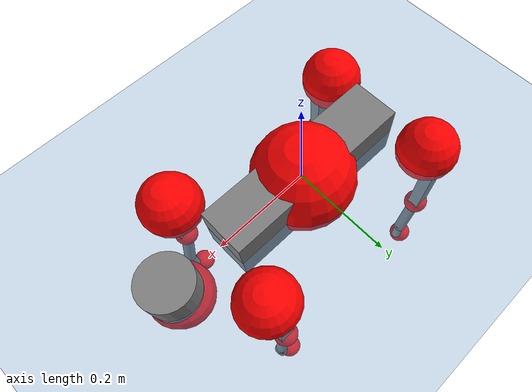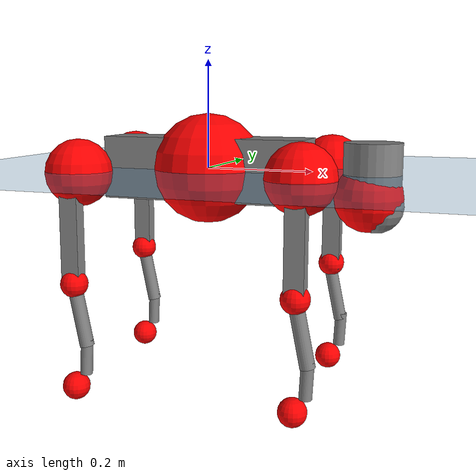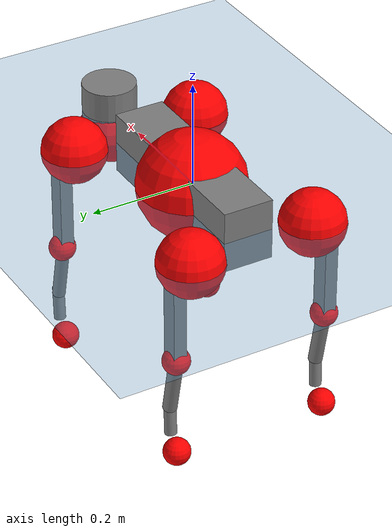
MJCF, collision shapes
<mujoco model="go2">
  <compiler angle="radian" assetdir="assets" balanceinertia="true" inertiafromgeom="false"/>

  <option timestep="0.005" density="1.2" viscosity="2e-05"/>

  <size nkey="1"/>

  <visual>
    <quality shadowsize="8192"/>
    <map shadowclip="0.5"/>
  </visual>

  <default>
    <default class="/">
      <geom contype="0" conaffinity="0" group="1" solref="-1000 -80"/>
      <site size="0.01 0.005 0.005" group="5"/>
      <general forcelimited="true" biastype="affine" gainprm="20" biasprm="0 -20 -0.5"/>
      <default class="go2">
        <joint armature="0.01" damping="0.01" frictionloss="0.2"/>
        <geom condim="1" margin="0.001"/>
        <default class="visual">
          <geom type="mesh" group="2"/>
        </default>
        <default class="collision">
          <geom group="3"/>
          <default class="foot">
            <geom size="0.022 0 0" condim="6" priority="1" friction="0.8 0.02 0.01" solimp="0.015 1 0.022"/>
          </default>
        </default>
        <default class="reward_collision_sphere">
          <geom group="5" rgba="1 0 0 1"/>
        </default>
      </default>
    </default>
  </default>

  <asset>
    <texture type="skybox" colorspace="auto" name="//unnamed_texture_0" builtin="gradient" rgb1="0.95 0.95 0.95" rgb2="0.95 0.95 0.95" width="100" height="600"/>
    <texture type="2d" colorspace="auto" name="texplane" builtin="checker" rgb1="0.345 0.575 0.748" rgb2="0.345 0.575 0.748" markrgb="1 1 1" width="512" height="512"/>
    <material name="MatPlane" class="/" texture="texplane" texuniform="true" texrepeat="2 2" specular="0.9"/>
    <material name="metal" class="/" rgba="0.9 0.95 0.95 1"/>
    <material name="black" class="/" rgba="0 0 0 1"/>
    <material name="white" class="/"/>
    <material name="gray" class="/" rgba="0.671705 0.692426 0.77427 1"/>
    <mesh name="base_0" class="/" file="base_0.obj"/>
    <mesh name="base_1" class="/" file="base_1.obj"/>
    <mesh name="base_2" class="/" file="base_2.obj"/>
    <mesh name="base_3" class="/" file="base_3.obj"/>
    <mesh name="base_4" class="/" file="base_4.obj"/>
    <mesh name="hip_0" class="/" file="hip_0.obj"/>
    <mesh name="hip_1" class="/" file="hip_1.obj"/>
    <mesh name="thigh_0" class="/" file="thigh_0.obj"/>
    <mesh name="thigh_1" class="/" file="thigh_1.obj"/>
    <mesh name="thigh_mirror_0" class="/" file="thigh_mirror_0.obj"/>
    <mesh name="thigh_mirror_1" class="/" file="thigh_mirror_1.obj"/>
    <mesh name="calf_0" class="/" file="calf_0.obj"/>
    <mesh name="calf_1" class="/" file="calf_1.obj"/>
    <mesh name="calf_mirror_0" class="/" file="calf_mirror_0.obj"/>
    <mesh name="calf_mirror_1" class="/" file="calf_mirror_1.obj"/>
    <mesh name="foot" class="/" file="foot.obj"/>
  </asset>

  <worldbody>
    <geom name="floor" class="/" size="100 100 0.125" type="plane" group="0" material="MatPlane"/>
    <light name="toplight_shadow" class="/" pos="0 0 5" dir="0.0990148 0.0990148 -0.990148" type="directional" ambient="0.04 0.04 0.04" diffuse="0.55 0.55 0.55" specular="0.12 0.12 0.12"/>
    <light name="toplight_fill" class="/" pos="0 0 5" dir="0.0990148 0.0990148 -0.990148" type="directional" castshadow="false" ambient="0.04 0.04 0.04" diffuse="0.3 0.3 0.3" specular="0.08 0.08 0.08"/>
    <body name="trunk" childclass="go2" pos="-0.00135854 0.00258134 -0.000255233" quat="0.999999 0.000951405 0.000596827 0.000432899">
      <inertial pos="0.0229771 -0.000906424 -0.0050746" quat="0.00705798 0.716516 0.00276805 0.697529" mass="7.69833" diaginertia="0.153376 0.142361 0.016634"/>
      <joint name="//unnamed_joint_0" type="free" armature="0" damping="0" frictionloss="0"/>
      <geom name="//unnamed_geom_1" class="visual" material="black" mesh="base_0"/>
      <geom name="//unnamed_geom_2" class="visual" material="black" mesh="base_1"/>
      <geom name="//unnamed_geom_3" class="visual" material="black" mesh="base_2"/>
      <geom name="//unnamed_geom_4" class="visual" material="white" mesh="base_3"/>
      <geom name="//unnamed_geom_5" class="visual" material="gray" mesh="base_4"/>
      <geom name="trunk_1" class="collision" size="0.193291 0.0480402 0.0585731" type="box"/>
      <geom name="trunk_2" class="collision" size="0.0513799 0.0462419" pos="0.307733 0 0.0092748" type="cylinder"/>
      <geom name="trunk_3" class="collision" size="0.0482971" pos="0.316371 0 -0.0556488"/>
      <geom name="//unnamed_geom_9" class="reward_collision_sphere" size="0.10276"/>
      <geom name="//unnamed_geom_10" class="reward_collision_sphere" size="0.0616559" pos="0.302334 0 -0.0417366"/>
      <site name="imu" pos="-0.0148803 -0.00701448 0.0523759" size="0.010276"/>
      <camera name="track" pos="0 -2.1511 0" quat="0.707107 0.707107 0 0" mode="trackcom"/>
      <camera name="ego_camera" pos="0.336887 0 0.0417366" quat="-0.5 -0.5 0.5 0.5"/>
      <body name="FL_hip" pos="0.20858 0.0507346 -0.000770495" quat="1 -0.000391241 -2.28206e-05 -0.000222279">
        <inertial pos="-0.00380106 -0.000165156 0.000474977" quat="0.495097 0.498408 0.507498 0.498914" mass="0.719683" diaginertia="0.00127033 0.000856885 0.000326681"/>
        <joint name="FL_hip_joint" pos="0 0 0" axis="0.9998 0.0173342 -0.00995142" stiffness="0.0146722" range="-1.05569 1.0483" armature="0.0116302" damping="0.0162202" frictionloss="0.228398"/>
        <geom name="//unnamed_geom_11" class="visual" material="metal" mesh="hip_0"/>
        <geom name="//unnamed_geom_12" class="visual" material="gray" mesh="hip_1"/>
        <geom name="//unnamed_geom_13" class="collision" size="0.0472695 0.020552" pos="0 0.0860441 0" quat="0.707107 0.707107 0 0" type="cylinder"/>
        <geom name="//unnamed_geom_14" class="reward_collision_sphere" size="0.0616559" pos="0 0.0752886 0"/>
        <body name="FL_thigh" pos="-0.0014449 0.103661 -0.000829607" quat="0.999999 0.000724 0.00051597 0.00081473">
          <inertial pos="-0.00476931 -0.0241518 -0.0272479" quat="0.823913 0.0812107 -0.0170869 0.560606" mass="1.20517" diaginertia="0.00836942 0.00814555 0.000588363"/>
          <joint name="FL_thigh_joint" pos="0 0 0" axis="0.00745151 0.999956 -0.00561745" range="-1.52026 3.48383" armature="0.0099993" damping="0" frictionloss="0.187754"/>
          <geom name="//unnamed_geom_15" class="visual" material="metal" mesh="thigh_0"/>
          <geom name="//unnamed_geom_16" class="visual" material="gray" mesh="thigh_1"/>
          <geom name="//unnamed_geom_17" class="collision" size="0.109439 0.0125881 0.0174692" pos="0 0 -0.0987766" quat="0.707107 0 0.707107 0" type="box"/>
          <body name="FL_calf" pos="-0.000654761 0.00315734 -0.197918" quat="1 0.000287477 7.36182e-06 0.000253696">
            <inertial pos="0.00893729 -0.0027389 -0.130172" quat="0.712768 0.0113878 -0.00620745 0.70128" mass="0.272025" diaginertia="0.00222252 0.00213227 3.74829e-05"/>
            <joint name="FL_calf_joint" pos="0 0 0" axis="0.0052806 0.999976 0.00451129" stiffness="0.0104972" range="-2.73054 -0.868494" armature="0.00986399" damping="0.00460828" frictionloss="0.213129"/>
            <geom name="//unnamed_geom_18" class="visual" material="gray" mesh="calf_0"/>
            <geom name="//unnamed_geom_19" class="visual" material="black" mesh="calf_1"/>
            <geom name="FL_calf0" class="collision" size="0.0123312 0.0616559" pos="0.00863813 0 -0.0556488" quat="0.994493 0 -0.104807 0" type="cylinder"/>
            <geom name="//unnamed_geom_21" class="collision" size="0.0113036 0.033397" pos="0.0215953 0 -0.137267" quat="0.999688 0 0.0249974 0" type="cylinder"/>
            <geom name="//unnamed_geom_22" class="visual" pos="0 0 -0.197553" quat="1 0 0 0" material="black" mesh="foot"/>
            <geom name="FL_foot" class="foot" size="0.0222966" pos="-0.00215953 0 -0.197553"/>
            <geom name="//unnamed_geom_24" class="reward_collision_sphere" size="0.02569"/>
            <geom name="//unnamed_geom_25" class="reward_collision_sphere" size="0.02569" pos="-0.00215953 0 -0.197553"/>
            <site name="FL_foot" class="foot" pos="-0.00215953 0 -0.197553" size="0.010276"/>
          </body>
        </body>
      </body>
      <body name="FR_hip" pos="0.211954 -0.0531274 0.00136563" quat="1 -0.000272079 -8.81722e-05 -0.000160171">
        <inertial pos="-0.00873626 0.000546124 0.00254661" quat="0.495654 0.50785 0.503847 0.492497" mass="0.727103" diaginertia="0.00125915 0.000820479 0.000319068"/>
        <joint name="FR_hip_joint" pos="0 0 0" axis="0.999981 -0.00610746 0.000947297" stiffness="0.00792916" range="-1.00831 1.06837" armature="0.00999724" damping="0.00551078" frictionloss="0.211657"/>
        <geom name="//unnamed_geom_26" class="visual" pos="0 1.28994e-09 5.53282e-08" quat="4.63268e-05 1 0 0" material="metal" mesh="hip_0"/>
        <geom name="//unnamed_geom_27" class="visual" pos="0 2.09115e-09 -1.36848e-07" quat="4.63268e-05 1 0 0" material="gray" mesh="hip_1"/>
        <geom name="//unnamed_geom_28" class="collision" size="0.0472695 0.020552" pos="0 -0.0860441 0" quat="0.707107 0.707107 0 0" type="cylinder"/>
        <geom name="//unnamed_geom_29" class="reward_collision_sphere" size="0.0616559" pos="0 -0.0752886 0"/>
        <body name="FR_thigh" pos="0.0012071 -0.104683 0.00190395" quat="1 3.73898e-05 0.000100159 -7.49206e-05">
          <inertial pos="-0.00612284 0.0201619 -0.0277429" quat="0.551636 -0.018625 0.0839841 0.829637" mass="1.28878" diaginertia="0.00875041 0.00887166 0.000624541"/>
          <joint name="FR_thigh_joint" pos="0 0 0" axis="-0.00287672 -0.999996 -0.000604492" stiffness="0.0113086" range="-3.51695 1.61452" armature="0.00883944" damping="0.013871" frictionloss="0.226959"/>
          <geom name="//unnamed_geom_30" class="visual" material="metal" mesh="thigh_mirror_0"/>
          <geom name="//unnamed_geom_31" class="visual" material="gray" mesh="thigh_mirror_1"/>
          <geom name="//unnamed_geom_32" class="collision" size="0.109439 0.0125881 0.0174692" pos="0 0 -0.0987766" quat="0.707107 0 0.707107 0" type="box"/>
          <body name="FR_calf" pos="-0.000122575 0.00232128 -0.197892" quat="0.999999 0.000585387 -0.00110216 0.000810892">
            <inertial pos="0.00277981 -0.000534261 -0.13172" quat="0.703046 0.00450821 0.00484627 0.711114" mass="0.258671" diaginertia="0.00219959 0.00204124 3.44159e-05"/>
            <joint name="FR_calf_joint" pos="0 0 0" axis="-0.00142879 -0.999941 -0.0107428" range="0.883989 2.71847" armature="0.0110549" damping="0" frictionloss="0.193673"/>
            <geom name="//unnamed_geom_33" class="visual" material="gray" mesh="calf_mirror_0"/>
            <geom name="//unnamed_geom_34" class="visual" material="black" mesh="calf_mirror_1"/>
            <geom name="FR_calf0" class="collision" size="0.0133588 0.0616559" pos="0.0107977 0 -0.0556488" quat="0.995004 0 -0.0998334 0" type="cylinder"/>
            <geom name="//unnamed_geom_36" class="collision" size="0.0113036 0.033397" pos="0.0215953 0 -0.137267" quat="0.999688 0 0.0249974 0" type="cylinder"/>
            <geom name="//unnamed_geom_37" class="visual" pos="0 0 -0.197553" quat="1 0 0 0" material="black" mesh="foot"/>
            <geom name="FR_foot" class="foot" size="0.0199426" pos="-0.00215953 0 -0.197553"/>
            <geom name="//unnamed_geom_39" class="reward_collision_sphere" size="0.02569"/>
            <geom name="//unnamed_geom_40" class="reward_collision_sphere" size="0.02569" pos="-0.00215953 0 -0.197553"/>
            <site name="FR_foot" class="foot" pos="-0.00215953 0 -0.197553" size="0.010276"/>
          </body>
        </body>
      </body>
      <body name="RL_hip" pos="-0.213197 0.0504244 -0.00197125" quat="1 -0.000564363 -0.000295463 -5.67638e-05">
        <inertial pos="0.0035588 0.0056948 -0.000777704" quat="0.505489 0.499847 0.492865 0.501714" mass="0.720265" diaginertia="0.00126574 0.000867468 0.000335275"/>
        <joint name="RL_hip_joint" pos="0 0 0" axis="-0.999938 0.00143352 0.0110564" range="-1.0305 1.09909" armature="0.0103263" damping="0.00354838" frictionloss="0.178333"/>
        <geom name="//unnamed_geom_41" class="visual" pos="-1.32665e-09 0 -2.60055e-07" quat="4.63268e-05 0 1 0" material="metal" mesh="hip_0"/>
        <geom name="//unnamed_geom_42" class="visual" pos="-2.15066e-09 0 -2.30631e-07" quat="4.63268e-05 0 1 0" material="gray" mesh="hip_1"/>
        <geom name="//unnamed_geom_43" class="collision" size="0.0472695 0.020552" pos="0 0.0860441 0" quat="0.707107 0.707107 0 0" type="cylinder"/>
        <geom name="//unnamed_geom_44" class="reward_collision_sphere" size="0.0616559" pos="0 0.0752886 0"/>
        <body name="RL_thigh" pos="0.00173245 0.104669 0.000330785" quat="0.999999 -0.000903445 -0.000283036 0.000945872">
          <inertial pos="-0.00185986 -0.026612 -0.0305345" quat="0.829338 0.0850485 -0.0203164 0.551863" mass="1.29405" diaginertia="0.00868884 0.00847147 0.000633248"/>
          <joint name="RL_thigh_joint" pos="0 0 0" axis="0.00651927 0.999973 -0.0034891" stiffness="0.00498577" range="-0.505689 4.56953" armature="0.00918272" damping="0.0135843" frictionloss="0.198577"/>
          <geom name="//unnamed_geom_45" class="visual" material="metal" mesh="thigh_0"/>
          <geom name="//unnamed_geom_46" class="visual" material="gray" mesh="thigh_1"/>
          <geom name="//unnamed_geom_47" class="collision" size="0.109439 0.0125881 0.0174692" pos="0 0 -0.0987766" quat="0.707107 0 0.707107 0" type="box"/>
          <body name="RL_calf" pos="-0.00101097 -0.000811096 -0.194721" quat="0.999999 0.00129835 -0.00111157 0.000148267">
            <inertial pos="0.00730301 -0.00114963 -0.13526" quat="0.706584 -0.00395706 -0.00992401 0.707549" mass="0.264995" diaginertia="0.00218706 0.00202515 3.58085e-05"/>
            <joint name="RL_calf_joint" pos="0 0 0" axis="0.0179748 0.999838 -0.00113075" range="-2.67887 -0.859577" armature="0.011498" damping="0" frictionloss="0.205549"/>
            <geom name="//unnamed_geom_48" class="visual" material="gray" mesh="calf_0"/>
            <geom name="//unnamed_geom_49" class="visual" material="black" mesh="calf_1"/>
            <geom name="RL_calf0" class="collision" size="0.0133588 0.0616559" pos="0.0107977 0 -0.0556488" quat="0.995004 0 -0.0998334 0" type="cylinder"/>
            <geom name="//unnamed_geom_51" class="collision" size="0.0113036 0.033397" pos="0.0215953 0 -0.137267" quat="0.999688 0 0.0249974 0" type="cylinder"/>
            <geom name="//unnamed_geom_52" class="visual" pos="0 0 -0.197553" quat="1 0 0 0" material="black" mesh="foot"/>
            <geom name="RL_foot" class="foot" size="0.022776" pos="-0.00215953 0 -0.197553"/>
            <geom name="//unnamed_geom_54" class="reward_collision_sphere" size="0.02569"/>
            <geom name="//unnamed_geom_55" class="reward_collision_sphere" size="0.02569" pos="-0.00215953 0 -0.197553"/>
            <site name="RL_foot" class="foot" pos="-0.00215953 0 -0.197553" size="0.010276"/>
          </body>
        </body>
      </body>
      <body name="RR_hip" pos="-0.20592 -0.0477044 -0.00339222" quat="0.999999 0.000741659 0.000474334 0.000990028">
        <inertial pos="0.006476 1.45184e-05 -0.000912079" quat="0.501143 0.491923 0.491962 0.514627" mass="0.71955" diaginertia="0.00129329 0.000849119 0.000326982"/>
        <joint name="RR_hip_joint" pos="0 0 0" axis="-0.999897 0.00262556 0.0141034" range="-1.04296 1.10219" armature="0.00898719" damping="0.0183673" frictionloss="0.197055"/>
        <geom name="//unnamed_geom_56" class="visual" pos="1.32651e-09 1.28994e-09 -3.15383e-07" quat="2.14617e-09 4.63268e-05 4.63268e-05 -1" material="metal" mesh="hip_0"/>
        <geom name="//unnamed_geom_57" class="visual" pos="2.15102e-09 2.09115e-09 -9.37836e-08" quat="2.14617e-09 4.63268e-05 4.63268e-05 -1" material="gray" mesh="hip_1"/>
        <geom name="//unnamed_geom_58" class="collision" size="0.0472695 0.020552" pos="0 -0.0860441 0" quat="0.707107 0.707107 0 0" type="cylinder"/>
        <geom name="//unnamed_geom_59" class="reward_collision_sphere" size="0.0616559" pos="0 -0.0752886 0"/>
        <body name="RR_thigh" pos="-0.000622062 -0.105518 -0.00218949" quat="0.999999 -0.000410366 0.000912158 0.000958136">
          <inertial pos="-0.00147683 0.023976 -0.0278046" quat="0.564316 -0.0280493 0.0822253 0.820975" mass="1.19867" diaginertia="0.0086775 0.00825999 0.000569443"/>
          <joint name="RR_thigh_joint" pos="0 0 0" axis="0.0195588 -0.999794 0.00538006" range="-4.55167 0.576415" armature="0.00997735" damping="0.0152539" frictionloss="0.183258"/>
          <geom name="//unnamed_geom_60" class="visual" material="metal" mesh="thigh_mirror_0"/>
          <geom name="//unnamed_geom_61" class="visual" material="gray" mesh="thigh_mirror_1"/>
          <geom name="//unnamed_geom_62" class="collision" size="0.109439 0.0125881 0.0174692" pos="0 0 -0.0987766" quat="0.707107 0 0.707107 0" type="box"/>
          <body name="RR_calf" pos="0.00182121 -0.000501155 -0.199935" quat="1 0.000205014 -0.000203851 8.56322e-05">
            <inertial pos="0.00798611 0.0036593 -0.133525" quat="0.70353 -0.00451277 0.00158338 0.71065" mass="0.257211" diaginertia="0.00213849 0.00206244 3.61504e-05"/>
            <joint name="RR_calf_joint" pos="0 0 0" axis="0.00138868 -0.999997 0.00181759" range="0.784772 2.67778" armature="0.0104929" damping="0.02236" frictionloss="0.180151"/>
            <geom name="//unnamed_geom_63" class="visual" material="gray" mesh="calf_mirror_0"/>
            <geom name="//unnamed_geom_64" class="visual" material="black" mesh="calf_mirror_1"/>
            <geom name="RR_calf0" class="collision" size="0.0133588 0.0616559" pos="0.0107977 0 -0.0556488" quat="0.995004 0 -0.0998334 0" type="cylinder"/>
            <geom name="//unnamed_geom_66" class="collision" size="0.0113036 0.033397" pos="0.0215953 0 -0.137267" quat="0.999688 0 0.0249974 0" type="cylinder"/>
            <geom name="//unnamed_geom_67" class="visual" pos="0 0 -0.197553" quat="1 0 0 0" material="black" mesh="foot"/>
            <geom name="RR_foot" class="foot" size="0.0200875" pos="-0.00215953 0 -0.197553"/>
            <geom name="//unnamed_geom_69" class="reward_collision_sphere" size="0.02569"/>
            <geom name="//unnamed_geom_70" class="reward_collision_sphere" size="0.02569" pos="-0.00215953 0 -0.197553"/>
            <site name="RR_foot" class="foot" pos="-0.00215953 0 -0.197553" size="0.010276"/>
          </body>
        </body>
      </body>
    </body>
  </worldbody>

  <contact>
    <pair class="/" geom1="floor" geom2="FL_foot" name="//unnamed_contact_0"/>
    <pair class="/" geom1="floor" geom2="FR_foot" name="//unnamed_contact_1"/>
    <pair class="/" geom1="floor" geom2="RL_foot" name="//unnamed_contact_2"/>
    <pair class="/" geom1="floor" geom2="RR_foot" name="//unnamed_contact_3"/>
  </contact>

  <actuator>
    <general name="FL_hip" class="/" joint="FL_hip_joint" forcerange="-24.4617 24.4617" gainprm="20.566" biasprm="0 -20.566 -0.547114"/>
    <general name="FL_thigh" class="/" joint="FL_thigh_joint" forcerange="-24.9674 24.9674" gainprm="20.566" biasprm="0 -20.566 -0.547114"/>
    <general name="FL_calf" class="/" joint="FL_calf_joint" forcerange="-50.7964 50.7964" gainprm="20.566" biasprm="0 -20.566 -0.547114"/>
    <general name="FR_hip" class="/" joint="FR_hip_joint" forcerange="-24.4687 24.4687" gainprm="20.566" biasprm="0 -20.566 -0.547114"/>
    <general name="FR_thigh" class="/" joint="FR_thigh_joint" forcerange="-25.2152 25.2152" gainprm="20.566" biasprm="0 -20.566 -0.547114"/>
    <general name="FR_calf" class="/" joint="FR_calf_joint" forcerange="-48.5208 48.5208" gainprm="20.566" biasprm="0 -20.566 -0.547114"/>
    <general name="RL_hip" class="/" joint="RL_hip_joint" forcerange="-24.2911 24.2911" gainprm="20.566" biasprm="0 -20.566 -0.547114"/>
    <general name="RL_thigh" class="/" joint="RL_thigh_joint" forcerange="-25.5823 25.5823" gainprm="20.566" biasprm="0 -20.566 -0.547114"/>
    <general name="RL_calf" class="/" joint="RL_calf_joint" forcerange="-43.1827 43.1827" gainprm="20.566" biasprm="0 -20.566 -0.547114"/>
    <general name="RR_hip" class="/" joint="RR_hip_joint" forcerange="-24.3728 24.3728" gainprm="20.566" biasprm="0 -20.566 -0.547114"/>
    <general name="RR_thigh" class="/" joint="RR_thigh_joint" forcerange="-26.7332 26.7332" gainprm="20.566" biasprm="0 -20.566 -0.547114"/>
    <general name="RR_calf" class="/" joint="RR_calf_joint" forcerange="-52.7395 52.7395" gainprm="20.566" biasprm="0 -20.566 -0.547114"/>
  </actuator>

  <sensor>
    <gyro site="imu" name="imu_angular_velocity"/>
    <velocimeter site="imu" name="imu_linear_velocity"/>
    <framelinvel objtype="site" objname="FL_foot" name="FL_foot_global_linear_velocity"/>
    <framelinvel objtype="site" objname="FR_foot" name="FR_foot_global_linear_velocity"/>
    <framelinvel objtype="site" objname="RL_foot" name="RL_foot_global_linear_velocity"/>
    <framelinvel objtype="site" objname="RR_foot" name="RR_foot_global_linear_velocity"/>
  </sensor>

  <keyframe>
    <key name="home" qpos="0 0 0.325 1 0 0 0 0.1 0.8 -1.5 -0.1 -0.8 1.5 -0.1 0.8 -1.5 0.1 -0.8 1.5"/>
  </keyframe>
</mujoco>
